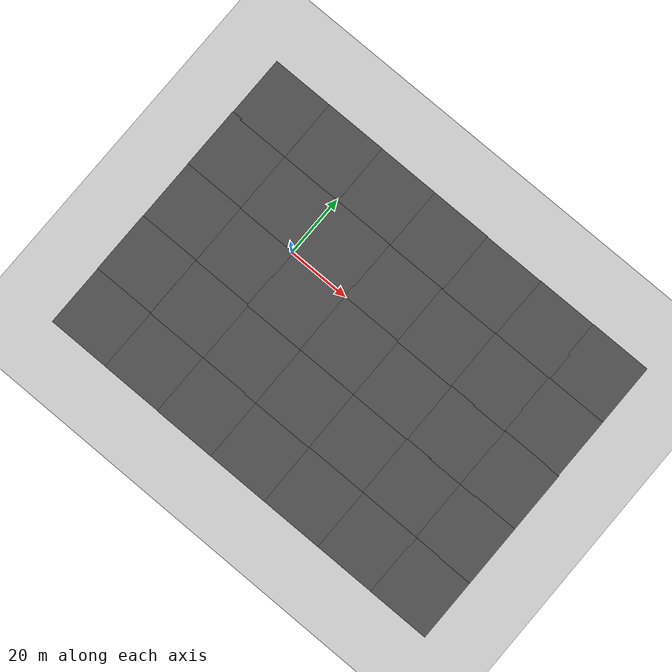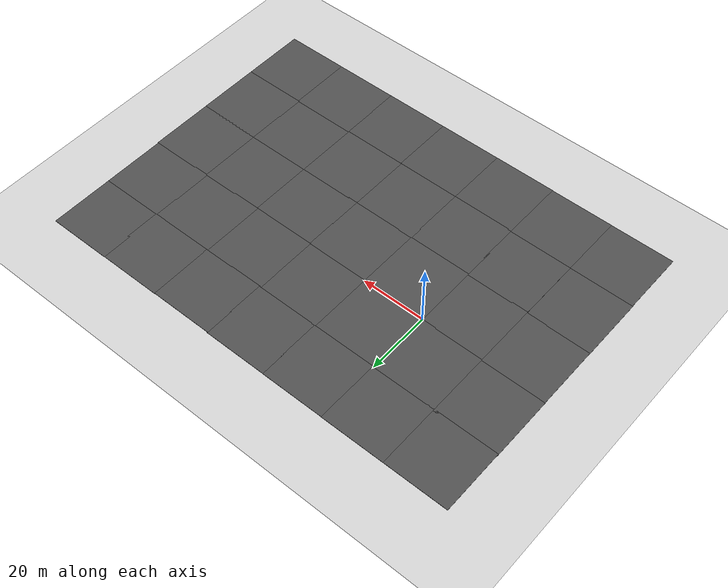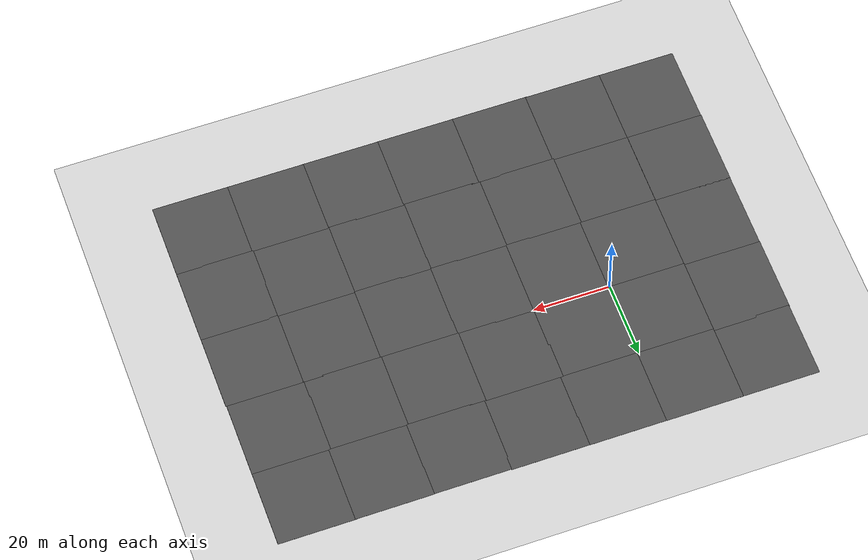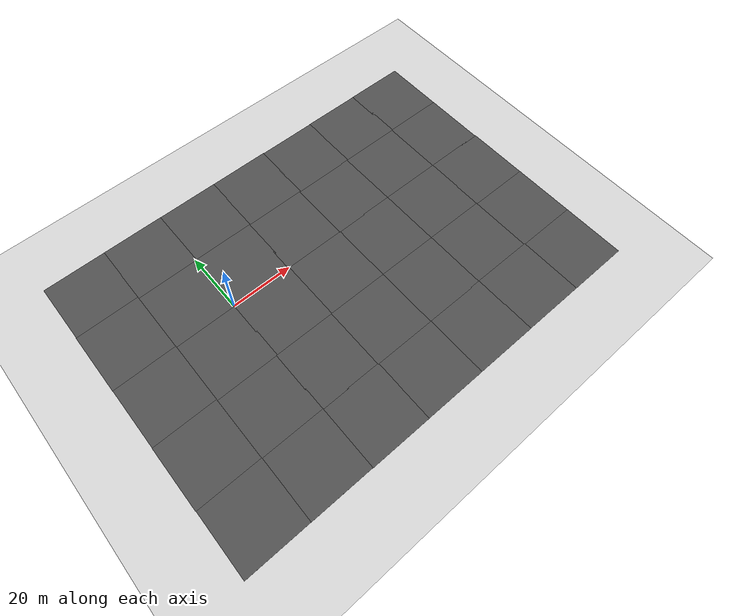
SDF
<sdf version="1.6">
 <world name="default">
  <light name="sun" type="directional">
   <pose>0 0 10 0 -0 0</pose>
   <diffuse>0.8 0.8 0.8 1</diffuse>
   <specular>0.1 0.1 0.1 1</specular>
   <attenuation>
    <range>1000</range>
    <constant>0.9</constant>
    <linear>0.01</linear>
    <quadratic>0.001</quadratic>
   </attenuation>
   <direction>-0.5 0.5 -1</direction>
  </light>
  <model name="ground_plane">
   <static>1</static>
   <link name="link">
    <collision name="collision">
     <geometry><plane><normal>0 0 1</normal><size>100 100</size></plane></geometry>
     <surface><friction><ode><mu>100</mu><mu2>50</mu2></ode></friction></surface>
    </collision>
    <visual name="visual">
     <cast_shadows>0</cast_shadows>
     <geometry><plane><normal>0 0 1</normal><size>100 100</size></plane></geometry>
     <material>
      <script><uri>file://media/materials/scripts/gazebo.material</uri><name>Gazebo/Grey</name></script>
     </material>
    </visual>
   </link>
  </model>
  <gravity>0 0 -9.8</gravity>
  <magnetic_field>6e-06 2.3e-05 -4.2e-05</magnetic_field>
  <atmosphere type="adiabatic"/>
  <physics name="default_physics" default="0" type="ode">
   <max_step_size>0.001</max_step_size>
   <real_time_factor>1</real_time_factor>
   <real_time_update_rate>1000</real_time_update_rate>
  </physics>
  <scene><ambient>0.4 0.4 0.4 1</ambient><background>0.7 0.7 0.7 1</background><shadows>1</shadows></scene>
  <spherical_coordinates>
   <surface_model>EARTH_WGS84</surface_model>
   <latitude_deg>0</latitude_deg>
   <longitude_deg>0</longitude_deg>
   <elevation>0</elevation>
   <heading_deg>0</heading_deg>
  </spherical_coordinates>
  <model name="asphalt_plane">
   <static>1</static>
   <link name="link">
    <collision name="collision"><geometry><box><size>20 20 0.1</size></box></geometry></collision>
    <visual name="visual">
     <cast_shadows>0</cast_shadows>
     <geometry><box><size>20 20 0.1</size></box></geometry>
     <material>
      <script>
       <uri>model://asphalt_plane/materials/scripts</uri>
       <uri>model://asphalt_plane/materials/textures</uri>
       <name>vrc/asphalt</name>
      </script>
     </material>
    </visual>
   </link>
   <pose>9.99171 -10.0153 0 0 -0 0</pose>
  </model>
  <model name="asphalt_plane_0">
   <static>1</static>
   <link name="link">
    <collision name="collision"><geometry><box><size>20 20 0.1</size></box></geometry></collision>
    <visual name="visual">
     <cast_shadows>0</cast_shadows>
     <geometry><box><size>20 20 0.1</size></box></geometry>
     <material>
      <script>
       <uri>model://asphalt_plane/materials/scripts</uri>
       <uri>model://asphalt_plane/materials/textures</uri>
       <name>vrc/asphalt</name>
      </script>
     </material>
    </visual>
   </link>
   <pose>29.831 -9.97405 0 0 -0 0</pose>
  </model>
  <model name="asphalt_plane_1">
   <static>1</static>
   <link name="link">
    <collision name="collision"><geometry><box><size>20 20 0.1</size></box></geometry></collision>
    <visual name="visual">
     <cast_shadows>0</cast_shadows>
     <geometry><box><size>20 20 0.1</size></box></geometry>
     <material>
      <script>
       <uri>model://asphalt_plane/materials/scripts</uri>
       <uri>model://asphalt_plane/materials/textures</uri>
       <name>vrc/asphalt</name>
      </script>
     </material>
    </visual>
   </link>
   <pose>49.6965 -10.0129 0 0 -0 0</pose>
  </model>
  <model name="asphalt_plane_2">
   <static>1</static>
   <link name="link">
    <collision name="collision"><geometry><box><size>20 20 0.1</size></box></geometry></collision>
    <visual name="visual">
     <cast_shadows>0</cast_shadows>
     <geometry><box><size>20 20 0.1</size></box></geometry>
     <material>
      <script>
       <uri>model://asphalt_plane/materials/scripts</uri>
       <uri>model://asphalt_plane/materials/textures</uri>
       <name>vrc/asphalt</name>
      </script>
     </material>
    </visual>
   </link>
   <pose>69.5599 -10.0149 0 0 -0 0</pose>
  </model>
  <model name="asphalt_plane_3">
   <static>1</static>
   <link name="link">
    <collision name="collision"><geometry><box><size>20 20 0.1</size></box></geometry></collision>
    <visual name="visual">
     <cast_shadows>0</cast_shadows>
     <geometry><box><size>20 20 0.1</size></box></geometry>
     <material>
      <script>
       <uri>model://asphalt_plane/materials/scripts</uri>
       <uri>model://asphalt_plane/materials/textures</uri>
       <name>vrc/asphalt</name>
      </script>
     </material>
    </visual>
   </link>
   <pose>89.4137 -10.0089 0 0 -0 0</pose>
  </model>
  <model name="asphalt_plane_4">
   <static>1</static>
   <link name="link">
    <collision name="collision"><geometry><box><size>20 20 0.1</size></box></geometry></collision>
    <visual name="visual">
     <cast_shadows>0</cast_shadows>
     <geometry><box><size>20 20 0.1</size></box></geometry>
     <material>
      <script>
       <uri>model://asphalt_plane/materials/scripts</uri>
       <uri>model://asphalt_plane/materials/textures</uri>
       <name>vrc/asphalt</name>
      </script>
     </material>
    </visual>
   </link>
   <pose>10.0497 -29.8407 0 0 -0 0</pose>
  </model>
  <model name="asphalt_plane_5">
   <static>1</static>
   <link name="link">
    <collision name="collision"><geometry><box><size>20 20 0.1</size></box></geometry></collision>
    <visual name="visual">
     <cast_shadows>0</cast_shadows>
     <geometry><box><size>20 20 0.1</size></box></geometry>
     <material>
      <script>
       <uri>model://asphalt_plane/materials/scripts</uri>
       <uri>model://asphalt_plane/materials/textures</uri>
       <name>vrc/asphalt</name>
      </script>
     </material>
    </visual>
   </link>
   <pose>29.7981 -29.7937 0 0 -0 0</pose>
  </model>
  <model name="asphalt_plane_6">
   <static>1</static>
   <link name="link">
    <collision name="collision"><geometry><box><size>20 20 0.1</size></box></geometry></collision>
    <visual name="visual">
     <cast_shadows>0</cast_shadows>
     <geometry><box><size>20 20 0.1</size></box></geometry>
     <material>
      <script>
       <uri>model://asphalt_plane/materials/scripts</uri>
       <uri>model://asphalt_plane/materials/textures</uri>
       <name>vrc/asphalt</name>
      </script>
     </material>
    </visual>
   </link>
   <pose>49.6865 -29.7694 0 0 -0 0</pose>
  </model>
  <model name="asphalt_plane_7">
   <static>1</static>
   <link name="link">
    <collision name="collision"><geometry><box><size>20 20 0.1</size></box></geometry></collision>
    <visual name="visual">
     <cast_shadows>0</cast_shadows>
     <geometry><box><size>20 20 0.1</size></box></geometry>
     <material>
      <script>
       <uri>model://asphalt_plane/materials/scripts</uri>
       <uri>model://asphalt_plane/materials/textures</uri>
       <name>vrc/asphalt</name>
      </script>
     </material>
    </visual>
   </link>
   <pose>69.6247 -29.7446 0 0 -0 0</pose>
  </model>
  <model name="asphalt_plane_8">
   <static>1</static>
   <link name="link">
    <collision name="collision"><geometry><box><size>20 20 0.1</size></box></geometry></collision>
    <visual name="visual">
     <cast_shadows>0</cast_shadows>
     <geometry><box><size>20 20 0.1</size></box></geometry>
     <material>
      <script>
       <uri>model://asphalt_plane/materials/scripts</uri>
       <uri>model://asphalt_plane/materials/textures</uri>
       <name>vrc/asphalt</name>
      </script>
     </material>
    </visual>
   </link>
   <pose>89.4459 -29.7226 0 0 -0 0</pose>
  </model>
  <model name="asphalt_plane_9">
   <static>1</static>
   <link name="link">
    <collision name="collision"><geometry><box><size>20 20 0.1</size></box></geometry></collision>
    <visual name="visual">
     <cast_shadows>0</cast_shadows>
     <geometry><box><size>20 20 0.1</size></box></geometry>
     <material>
      <script>
       <uri>model://asphalt_plane/materials/scripts</uri>
       <uri>model://asphalt_plane/materials/textures</uri>
       <name>vrc/asphalt</name>
      </script>
     </material>
    </visual>
   </link>
   <pose>10.0989 -49.5732 0 0 -0 0</pose>
  </model>
  <model name="asphalt_plane_10">
   <static>1</static>
   <link name="link">
    <collision name="collision"><geometry><box><size>20 20 0.1</size></box></geometry></collision>
    <visual name="visual">
     <cast_shadows>0</cast_shadows>
     <geometry><box><size>20 20 0.1</size></box></geometry>
     <material>
      <script>
       <uri>model://asphalt_plane/materials/scripts</uri>
       <uri>model://asphalt_plane/materials/textures</uri>
       <name>vrc/asphalt</name>
      </script>
     </material>
    </visual>
   </link>
   <pose>30.0299 -49.5563 0 0 -0 0</pose>
  </model>
  <model name="asphalt_plane_11">
   <static>1</static>
   <link name="link">
    <collision name="collision"><geometry><box><size>20 20 0.1</size></box></geometry></collision>
    <visual name="visual">
     <cast_shadows>0</cast_shadows>
     <geometry><box><size>20 20 0.1</size></box></geometry>
     <material>
      <script>
       <uri>model://asphalt_plane/materials/scripts</uri>
       <uri>model://asphalt_plane/materials/textures</uri>
       <name>vrc/asphalt</name>
      </script>
     </material>
    </visual>
   </link>
   <pose>49.9373 -49.5384 0 0 -0 0</pose>
  </model>
  <model name="asphalt_plane_12">
   <static>1</static>
   <link name="link">
    <collision name="collision"><geometry><box><size>20 20 0.1</size></box></geometry></collision>
    <visual name="visual">
     <cast_shadows>0</cast_shadows>
     <geometry><box><size>20 20 0.1</size></box></geometry>
     <material>
      <script>
       <uri>model://asphalt_plane/materials/scripts</uri>
       <uri>model://asphalt_plane/materials/textures</uri>
       <name>vrc/asphalt</name>
      </script>
     </material>
    </visual>
   </link>
   <pose>69.7885 -49.5121 0 0 -0 0</pose>
  </model>
  <model name="asphalt_plane_13">
   <static>1</static>
   <link name="link">
    <collision name="collision"><geometry><box><size>20 20 0.1</size></box></geometry></collision>
    <visual name="visual">
     <cast_shadows>0</cast_shadows>
     <geometry><box><size>20 20 0.1</size></box></geometry>
     <material>
      <script>
       <uri>model://asphalt_plane/materials/scripts</uri>
       <uri>model://asphalt_plane/materials/textures</uri>
       <name>vrc/asphalt</name>
      </script>
     </material>
    </visual>
   </link>
   <pose>89.4494 -49.5252 0 0 -0 0</pose>
  </model>
  <model name="asphalt_plane_19">
   <static>1</static>
   <link name="link">
    <collision name="collision"><geometry><box><size>20 20 0.1</size></box></geometry></collision>
    <visual name="visual">
     <cast_shadows>0</cast_shadows>
     <geometry><box><size>20 20 0.1</size></box></geometry>
     <material>
      <script>
       <uri>model://asphalt_plane/materials/scripts</uri>
       <uri>model://asphalt_plane/materials/textures</uri>
       <name>vrc/asphalt</name>
      </script>
     </material>
    </visual>
   </link>
   <pose>9.96962 9.839 0 0 -0 0</pose>
  </model>
  <model name="asphalt_plane_20">
   <static>1</static>
   <link name="link">
    <collision name="collision"><geometry><box><size>20 20 0.1</size></box></geometry></collision>
    <visual name="visual">
     <cast_shadows>0</cast_shadows>
     <geometry><box><size>20 20 0.1</size></box></geometry>
     <material>
      <script>
       <uri>model://asphalt_plane/materials/scripts</uri>
       <uri>model://asphalt_plane/materials/textures</uri>
       <name>vrc/asphalt</name>
      </script>
     </material>
    </visual>
   </link>
   <pose>29.5794 9.81603 0 0 -0 0</pose>
  </model>
  <model name="asphalt_plane_21">
   <static>1</static>
   <link name="link">
    <collision name="collision"><geometry><box><size>20 20 0.1</size></box></geometry></collision>
    <visual name="visual">
     <cast_shadows>0</cast_shadows>
     <geometry><box><size>20 20 0.1</size></box></geometry>
     <material>
      <script>
       <uri>model://asphalt_plane/materials/scripts</uri>
       <uri>model://asphalt_plane/materials/textures</uri>
       <name>vrc/asphalt</name>
      </script>
     </material>
    </visual>
   </link>
   <pose>49.5078 9.69229 0 0 -0 0</pose>
  </model>
  <model name="asphalt_plane_22">
   <static>1</static>
   <link name="link">
    <collision name="collision"><geometry><box><size>20 20 0.1</size></box></geometry></collision>
    <visual name="visual">
     <cast_shadows>0</cast_shadows>
     <geometry><box><size>20 20 0.1</size></box></geometry>
     <material>
      <script>
       <uri>model://asphalt_plane/materials/scripts</uri>
       <uri>model://asphalt_plane/materials/textures</uri>
       <name>vrc/asphalt</name>
      </script>
     </material>
    </visual>
   </link>
   <pose>69.4437 9.66994 0 0 -0 0</pose>
  </model>
  <model name="asphalt_plane_23">
   <static>1</static>
   <link name="link">
    <collision name="collision"><geometry><box><size>20 20 0.1</size></box></geometry></collision>
    <visual name="visual">
     <cast_shadows>0</cast_shadows>
     <geometry><box><size>20 20 0.1</size></box></geometry>
     <material>
      <script>
       <uri>model://asphalt_plane/materials/scripts</uri>
       <uri>model://asphalt_plane/materials/textures</uri>
       <name>vrc/asphalt</name>
      </script>
     </material>
    </visual>
   </link>
   <pose>89.2031 9.72917 0 0 -0 0</pose>
  </model>
  <model name="asphalt_plane_24">
   <static>1</static>
   <link name="link">
    <collision name="collision"><geometry><box><size>20 20 0.1</size></box></geometry></collision>
    <visual name="visual">
     <cast_shadows>0</cast_shadows>
     <geometry><box><size>20 20 0.1</size></box></geometry>
     <material>
      <script>
       <uri>model://asphalt_plane/materials/scripts</uri>
       <uri>model://asphalt_plane/materials/textures</uri>
       <name>vrc/asphalt</name>
      </script>
     </material>
    </visual>
   </link>
   <pose>-9.64435 9.89511 0 0 -0 0</pose>
  </model>
  <model name="asphalt_plane_25">
   <static>1</static>
   <link name="link">
    <collision name="collision"><geometry><box><size>20 20 0.1</size></box></geometry></collision>
    <visual name="visual">
     <cast_shadows>0</cast_shadows>
     <geometry><box><size>20 20 0.1</size></box></geometry>
     <material>
      <script>
       <uri>model://asphalt_plane/materials/scripts</uri>
       <uri>model://asphalt_plane/materials/textures</uri>
       <name>vrc/asphalt</name>
      </script>
     </material>
    </visual>
   </link>
   <pose>-9.60623 -9.90594 0 0 -0 0</pose>
  </model>
  <model name="asphalt_plane_26">
   <static>1</static>
   <link name="link">
    <collision name="collision"><geometry><box><size>20 20 0.1</size></box></geometry></collision>
    <visual name="visual">
     <cast_shadows>0</cast_shadows>
     <geometry><box><size>20 20 0.1</size></box></geometry>
     <material>
      <script>
       <uri>model://asphalt_plane/materials/scripts</uri>
       <uri>model://asphalt_plane/materials/textures</uri>
       <name>vrc/asphalt</name>
      </script>
     </material>
    </visual>
   </link>
   <pose>-9.64434 -29.6212 0 0 -0 0</pose>
  </model>
  <model name="asphalt_plane_27">
   <static>1</static>
   <link name="link">
    <collision name="collision"><geometry><box><size>20 20 0.1</size></box></geometry></collision>
    <visual name="visual">
     <cast_shadows>0</cast_shadows>
     <geometry><box><size>20 20 0.1</size></box></geometry>
     <material>
      <script>
       <uri>model://asphalt_plane/materials/scripts</uri>
       <uri>model://asphalt_plane/materials/textures</uri>
       <name>vrc/asphalt</name>
      </script>
     </material>
    </visual>
   </link>
   <pose>-9.61063 -49.4905 0 0 -0 0</pose>
  </model>
  <model name="asphalt_plane_27_clone">
   <static>1</static>
   <link name="link">
    <collision name="collision"><geometry><box><size>20 20 0.1</size></box></geometry></collision>
    <visual name="visual">
     <cast_shadows>0</cast_shadows>
     <geometry><box><size>20 20 0.1</size></box></geometry>
     <material>
      <script>
       <uri>model://asphalt_plane/materials/scripts</uri>
       <uri>model://asphalt_plane/materials/textures</uri>
       <name>vrc/asphalt</name>
      </script>
     </material>
    </visual>
   </link>
   <pose>-9.63941 29.7473 0 0 -0 0</pose>
  </model>
  <model name="asphalt_plane_27_clone_0">
   <static>1</static>
   <link name="link">
    <collision name="collision"><geometry><box><size>20 20 0.1</size></box></geometry></collision>
    <visual name="visual">
     <cast_shadows>0</cast_shadows>
     <geometry><box><size>20 20 0.1</size></box></geometry>
     <material>
      <script>
       <uri>model://asphalt_plane/materials/scripts</uri>
       <uri>model://asphalt_plane/materials/textures</uri>
       <name>vrc/asphalt</name>
      </script>
     </material>
    </visual>
   </link>
   <pose>10.3162 29.6958 0 0 -0 0</pose>
  </model>
  <model name="asphalt_plane_27_clone_1">
   <static>1</static>
   <link name="link">
    <collision name="collision"><geometry><box><size>20 20 0.1</size></box></geometry></collision>
    <visual name="visual">
     <cast_shadows>0</cast_shadows>
     <geometry><box><size>20 20 0.1</size></box></geometry>
     <material>
      <script>
       <uri>model://asphalt_plane/materials/scripts</uri>
       <uri>model://asphalt_plane/materials/textures</uri>
       <name>vrc/asphalt</name>
      </script>
     </material>
    </visual>
   </link>
   <pose>30.1419 29.6666 0 0 -0 0</pose>
  </model>
  <model name="asphalt_plane_27_clone_2">
   <static>1</static>
   <link name="link">
    <collision name="collision"><geometry><box><size>20 20 0.1</size></box></geometry></collision>
    <visual name="visual">
     <cast_shadows>0</cast_shadows>
     <geometry><box><size>20 20 0.1</size></box></geometry>
     <material>
      <script>
       <uri>model://asphalt_plane/materials/scripts</uri>
       <uri>model://asphalt_plane/materials/textures</uri>
       <name>vrc/asphalt</name>
      </script>
     </material>
    </visual>
   </link>
   <pose>49.9045 29.5091 0 0 -0 0</pose>
  </model>
  <model name="asphalt_plane_27_clone_3">
   <static>1</static>
   <link name="link">
    <collision name="collision"><geometry><box><size>20 20 0.1</size></box></geometry></collision>
    <visual name="visual">
     <cast_shadows>0</cast_shadows>
     <geometry><box><size>20 20 0.1</size></box></geometry>
     <material>
      <script>
       <uri>model://asphalt_plane/materials/scripts</uri>
       <uri>model://asphalt_plane/materials/textures</uri>
       <name>vrc/asphalt</name>
      </script>
     </material>
    </visual>
   </link>
   <pose>69.7659 29.6003 0 0 -0 0</pose>
  </model>
  <model name="asphalt_plane_27_clone_4">
   <static>1</static>
   <link name="link">
    <collision name="collision"><geometry><box><size>20 20 0.1</size></box></geometry></collision>
    <visual name="visual">
     <cast_shadows>0</cast_shadows>
     <geometry><box><size>20 20 0.1</size></box></geometry>
     <material>
      <script>
       <uri>model://asphalt_plane/materials/scripts</uri>
       <uri>model://asphalt_plane/materials/textures</uri>
       <name>vrc/asphalt</name>
      </script>
     </material>
    </visual>
   </link>
   <pose>89.1845 29.6686 0 0 -0 0</pose>
  </model>
  <model name="asphalt_plane_27_clone_5">
   <static>1</static>
   <link name="link">
    <collision name="collision"><geometry><box><size>20 20 0.1</size></box></geometry></collision>
    <visual name="visual">
     <cast_shadows>0</cast_shadows>
     <geometry><box><size>20 20 0.1</size></box></geometry>
     <material>
      <script>
       <uri>model://asphalt_plane/materials/scripts</uri>
       <uri>model://asphalt_plane/materials/textures</uri>
       <name>vrc/asphalt</name>
      </script>
     </material>
    </visual>
   </link>
   <pose>-29.5621 -49.4533 0 0 -0 0</pose>
  </model>
  <model name="asphalt_plane_27_clone_6">
   <static>1</static>
   <link name="link">
    <collision name="collision"><geometry><box><size>20 20 0.1</size></box></geometry></collision>
    <visual name="visual">
     <cast_shadows>0</cast_shadows>
     <geometry><box><size>20 20 0.1</size></box></geometry>
     <material>
      <script>
       <uri>model://asphalt_plane/materials/scripts</uri>
       <uri>model://asphalt_plane/materials/textures</uri>
       <name>vrc/asphalt</name>
      </script>
     </material>
    </visual>
   </link>
   <pose>-29.6609 -29.4744 0 0 -0 0</pose>
  </model>
  <model name="asphalt_plane_27_clone_7">
   <static>1</static>
   <link name="link">
    <collision name="collision"><geometry><box><size>20 20 0.1</size></box></geometry></collision>
    <visual name="visual">
     <cast_shadows>0</cast_shadows>
     <geometry><box><size>20 20 0.1</size></box></geometry>
     <material>
      <script>
       <uri>model://asphalt_plane/materials/scripts</uri>
       <uri>model://asphalt_plane/materials/textures</uri>
       <name>vrc/asphalt</name>
      </script>
     </material>
    </visual>
   </link>
   <pose>-29.5874 -9.65431 0 0 -0 0</pose>
  </model>
  <model name="asphalt_plane_27_clone_8">
   <static>1</static>
   <link name="link">
    <collision name="collision"><geometry><box><size>20 20 0.1</size></box></geometry></collision>
    <visual name="visual">
     <cast_shadows>0</cast_shadows>
     <geometry><box><size>20 20 0.1</size></box></geometry>
     <material>
      <script>
       <uri>model://asphalt_plane/materials/scripts</uri>
       <uri>model://asphalt_plane/materials/textures</uri>
       <name>vrc/asphalt</name>
      </script>
     </material>
    </visual>
   </link>
   <pose>-29.643 10.2896 0 0 -0 0</pose>
  </model>
  <model name="asphalt_plane_27_clone_9">
   <static>1</static>
   <link name="link">
    <collision name="collision"><geometry><box><size>20 20 0.1</size></box></geometry></collision>
    <visual name="visual">
     <cast_shadows>0</cast_shadows>
     <geometry><box><size>20 20 0.1</size></box></geometry>
     <material>
      <script>
       <uri>model://asphalt_plane/materials/scripts</uri>
       <uri>model://asphalt_plane/materials/textures</uri>
       <name>vrc/asphalt</name>
      </script>
     </material>
    </visual>
   </link>
   <pose>-29.5318 29.7329 0 0 -0 0</pose>
  </model>
 </world>
</sdf>
